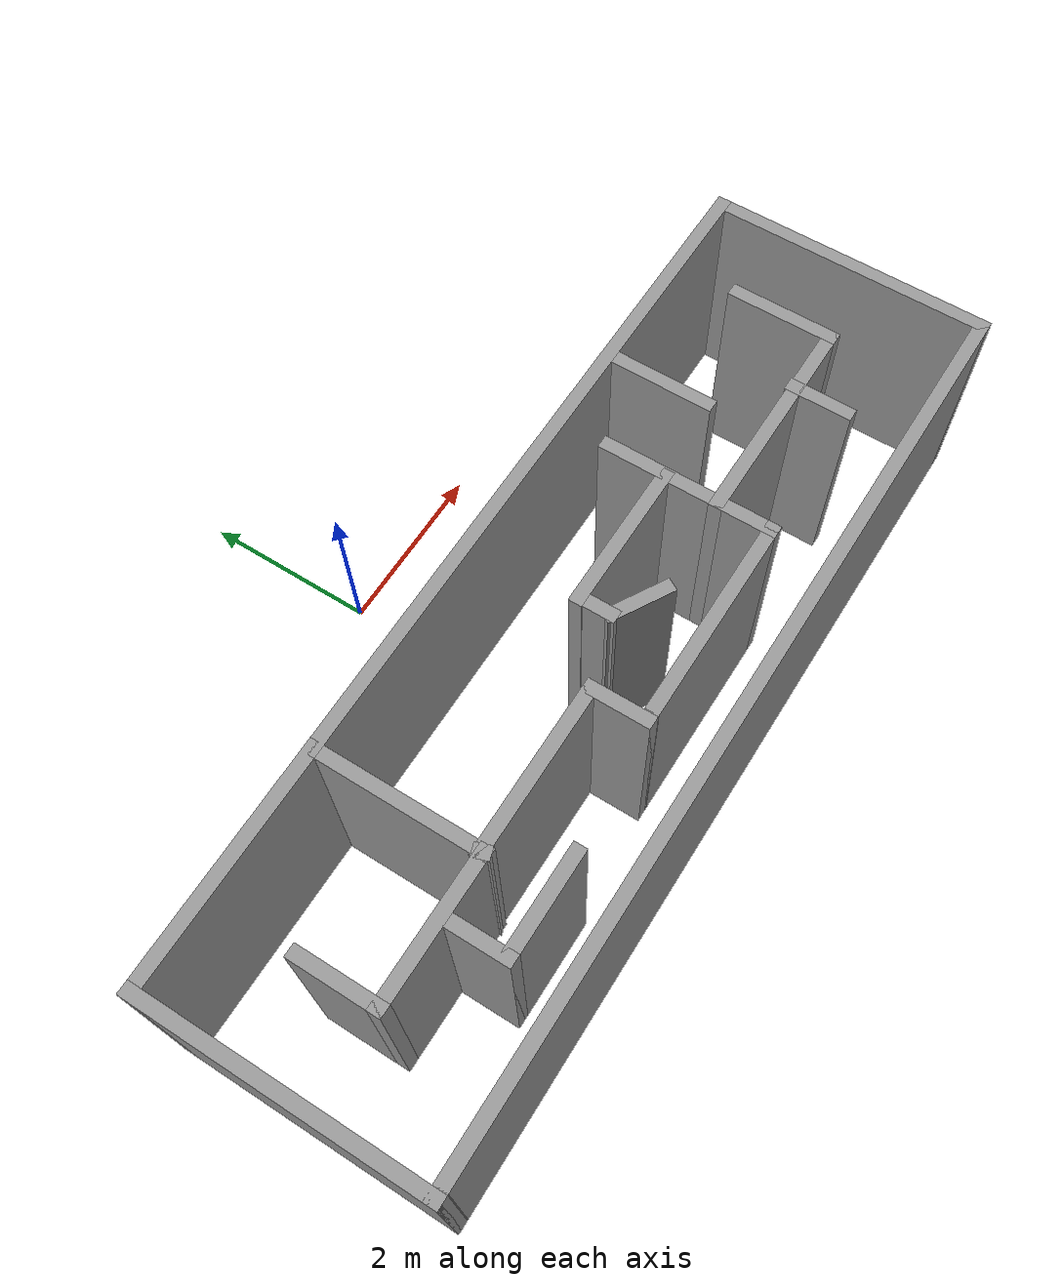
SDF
<?xml version='1.0'?>
<sdf version='1.7'>
  <model name='tmp_house'>
    <pose>0.225 -2.3075 0 0 -0 0</pose>
    <link name='Wall_0'>
      <collision name='Wall_0_Collision'>
        <geometry>
          <box>
            <size>2.75 0.15 2.5</size>
          </box>
        </geometry>
        <pose>0 0 1.25 0 -0 0</pose>
      </collision>
      <visual name='Wall_0_Visual'>
        <pose>0 0 1.25 0 -0 0</pose>
        <geometry>
          <box>
            <size>2.75 0.15 2.5</size>
          </box>
        </geometry>
        <material>
          <script>
            <uri>file://media/materials/scripts/gazebo.material</uri>
            <name>Gazebo/Grey</name>
          </script>
          <ambient>1 1 1 1</ambient>
        </material>
        <meta>
          <layer>0</layer>
        </meta>
      </visual>
      <pose>-3.755 0.8675 0 0 -0 3.14159</pose>
    </link>
    <link name='Wall_1'>
      <collision name='Wall_1_Collision'>
        <geometry>
          <box>
            <size>3.25 0.15 2.5</size>
          </box>
        </geometry>
        <pose>0 0 1.25 0 -0 0</pose>
      </collision>
      <visual name='Wall_1_Visual'>
        <pose>0 0 1.25 0 -0 0</pose>
        <geometry>
          <box>
            <size>3.25 0.15 2.5</size>
          </box>
        </geometry>
        <material>
          <script>
            <uri>file://media/materials/scripts/gazebo.material</uri>
            <name>Gazebo/Grey</name>
          </script>
          <ambient>1 1 1 1</ambient>
        </material>
        <meta>
          <layer>0</layer>
        </meta>
      </visual>
      <pose>-5.055 -0.6825 0 0 -0 -1.5708</pose>
    </link>
    <link name='Wall_10'>
      <collision name='Wall_10_Collision'>
        <geometry>
          <box>
            <size>0.181623 0.15 2.5</size>
          </box>
        </geometry>
        <pose>0 0 1.25 0 -0 0</pose>
      </collision>
      <visual name='Wall_10_Visual'>
        <pose>0 0 1.25 0 -0 0</pose>
        <geometry>
          <box>
            <size>0.181623 0.15 2.5</size>
          </box>
        </geometry>
        <material>
          <script>
            <uri>file://media/materials/scripts/gazebo.material</uri>
            <name>Gazebo/Grey</name>
          </script>
          <ambient>1 1 1 1</ambient>
        </material>
        <meta>
          <layer>0</layer>
        </meta>
      </visual>
      <pose>-2.46 -0.9675 0 0 -0 1.89255</pose>
    </link>
    <link name='Wall_11'>
      <collision name='Wall_11_Collision'>
        <geometry>
          <box>
            <size>2 0.15 2.5</size>
          </box>
        </geometry>
        <pose>0 0 1.25 0 -0 0</pose>
      </collision>
      <visual name='Wall_11_Visual'>
        <pose>0 0 1.25 0 -0 0</pose>
        <geometry>
          <box>
            <size>2 0.15 2.5</size>
          </box>
        </geometry>
        <material>
          <script>
            <uri>file://media/materials/scripts/gazebo.material</uri>
            <name>Gazebo/Grey</name>
          </script>
          <ambient>1 1 1 1</ambient>
        </material>
        <meta>
          <layer>0</layer>
        </meta>
      </visual>
      <pose>-1.54 -0.9525 0 0 -0 0</pose>
    </link>
    <link name='Wall_12'>
      <collision name='Wall_12_Collision'>
        <geometry>
          <box>
            <size>0.75 0.15 2.5</size>
          </box>
        </geometry>
        <pose>0 0 1.25 0 -0 0</pose>
      </collision>
      <visual name='Wall_12_Visual'>
        <pose>0 0 1.25 0 -0 0</pose>
        <geometry>
          <box>
            <size>0.75 0.15 2.5</size>
          </box>
        </geometry>
        <material>
          <script>
            <uri>file://media/materials/scripts/gazebo.material</uri>
            <name>Gazebo/Grey</name>
          </script>
          <ambient>1 1 1 1</ambient>
        </material>
        <meta>
          <layer>0</layer>
        </meta>
      </visual>
      <pose>-0.615 -1.2525 0 0 -0 -1.5708</pose>
    </link>
    <link name='Wall_13'>
      <collision name='Wall_13_Collision'>
        <geometry>
          <box>
            <size>0.16 0.15 2.5</size>
          </box>
        </geometry>
        <pose>0 0 1.25 0 -0 0</pose>
      </collision>
      <visual name='Wall_13_Visual'>
        <pose>0 0 1.25 0 -0 0</pose>
        <geometry>
          <box>
            <size>0.16 0.15 2.5</size>
          </box>
        </geometry>
        <material>
          <script>
            <uri>file://media/materials/scripts/gazebo.material</uri>
            <name>Gazebo/Grey</name>
          </script>
          <ambient>1 1 1 1</ambient>
        </material>
        <meta>
          <layer>0</layer>
        </meta>
      </visual>
      <pose>-0.61 -1.5525 0 0 -0 0</pose>
    </link>
    <link name='Wall_14'>
      <collision name='Wall_14_Collision'>
        <geometry>
          <box>
            <size>2.5 0.15 2.5</size>
          </box>
        </geometry>
        <pose>0 0 1.25 0 -0 0</pose>
      </collision>
      <visual name='Wall_14_Visual'>
        <pose>0 0 1.25 0 -0 0</pose>
        <geometry>
          <box>
            <size>2.5 0.15 2.5</size>
          </box>
        </geometry>
        <material>
          <script>
            <uri>file://media/materials/scripts/gazebo.material</uri>
            <name>Gazebo/Grey</name>
          </script>
          <ambient>1 1 1 1</ambient>
        </material>
        <meta>
          <layer>0</layer>
        </meta>
      </visual>
      <pose>0.57 -1.5525 0 0 -0 0</pose>
    </link>
    <link name='Wall_15'>
      <collision name='Wall_15_Collision'>
        <geometry>
          <box>
            <size>2 0.15 2.5</size>
          </box>
        </geometry>
        <pose>0 0 1.25 0 -0 0</pose>
      </collision>
      <visual name='Wall_15_Visual'>
        <pose>0 0 1.25 0 -0 0</pose>
        <geometry>
          <box>
            <size>2 0.15 2.5</size>
          </box>
        </geometry>
        <material>
          <script>
            <uri>file://media/materials/scripts/gazebo.material</uri>
            <name>Gazebo/Grey</name>
          </script>
          <ambient>1 1 1 1</ambient>
        </material>
        <meta>
          <layer>0</layer>
        </meta>
      </visual>
      <pose>1.745 -0.6275 0 0 -0 1.5708</pose>
    </link>
    <link name='Wall_17'>
      <collision name='Wall_17_Collision'>
        <geometry>
          <box>
            <size>1.75 0.15 2.5</size>
          </box>
        </geometry>
        <pose>0 0 1.25 0 -0 0</pose>
      </collision>
      <visual name='Wall_17_Visual'>
        <pose>0 0 1.25 0 -0 0</pose>
        <geometry>
          <box>
            <size>1.75 0.15 2.5</size>
          </box>
        </geometry>
        <material>
          <script>
            <uri>file://media/materials/scripts/gazebo.material</uri>
            <name>Gazebo/Grey</name>
          </script>
          <ambient>1 1 1 1</ambient>
        </material>
        <meta>
          <layer>0</layer>
        </meta>
      </visual>
      <pose>0.925 -0.3625 0 0 -0 3.14159</pose>
    </link>
    <link name='Wall_18'>
      <collision name='Wall_18_Collision'>
        <geometry>
          <box>
            <size>0.16 0.15 2.5</size>
          </box>
        </geometry>
        <pose>0 0 1.25 0 -0 0</pose>
      </collision>
      <visual name='Wall_18_Visual'>
        <pose>0 0 1.25 0 -0 0</pose>
        <geometry>
          <box>
            <size>0.16 0.15 2.5</size>
          </box>
        </geometry>
        <material>
          <script>
            <uri>file://media/materials/scripts/gazebo.material</uri>
            <name>Gazebo/Grey</name>
          </script>
          <ambient>1 1 1 1</ambient>
        </material>
        <meta>
          <layer>0</layer>
        </meta>
      </visual>
      <pose>0.13 -0.3625 0 0 -0 0</pose>
    </link>
    <link name='Wall_19'>
      <collision name='Wall_19_Collision'>
        <geometry>
          <box>
            <size>0.5 0.15 2.5</size>
          </box>
        </geometry>
        <pose>0 0 1.25 0 -0 0</pose>
      </collision>
      <visual name='Wall_19_Visual'>
        <pose>0 0 1.25 0 -0 0</pose>
        <geometry>
          <box>
            <size>0.5 0.15 2.5</size>
          </box>
        </geometry>
        <material>
          <script>
            <uri>file://media/materials/scripts/gazebo.material</uri>
            <name>Gazebo/Grey</name>
          </script>
          <ambient>1 1 1 1</ambient>
        </material>
        <meta>
          <layer>0</layer>
        </meta>
      </visual>
      <pose>0.135 -0.5375 0 0 -0 -1.5708</pose>
    </link>
    <link name='Wall_2'>
      <collision name='Wall_2_Collision'>
        <geometry>
          <box>
            <size>0.16 0.15 2.5</size>
          </box>
        </geometry>
        <pose>0 0 1.25 0 -0 0</pose>
      </collision>
      <visual name='Wall_2_Visual'>
        <pose>0 0 1.25 0 -0 0</pose>
        <geometry>
          <box>
            <size>0.16 0.15 2.5</size>
          </box>
        </geometry>
        <material>
          <script>
            <uri>file://media/materials/scripts/gazebo.material</uri>
            <name>Gazebo/Grey</name>
          </script>
          <ambient>1 1 1 1</ambient>
        </material>
        <meta>
          <layer>0</layer>
        </meta>
      </visual>
      <pose>-5.05 -2.2325 0 0 -0 0</pose>
    </link>
    <link name='Wall_20'>
      <collision name='Wall_20_Collision'>
        <geometry>
          <box>
            <size>0.75 0.15 2.5</size>
          </box>
        </geometry>
        <pose>0 0 1.25 0 -0 0</pose>
      </collision>
      <visual name='Wall_20_Visual'>
        <pose>0 0 1.25 0 -0 0</pose>
        <geometry>
          <box>
            <size>0.75 0.15 2.5</size>
          </box>
        </geometry>
        <material>
          <script>
            <uri>file://media/materials/scripts/gazebo.material</uri>
            <name>Gazebo/Grey</name>
          </script>
          <ambient>1 1 1 1</ambient>
        </material>
        <meta>
          <layer>0</layer>
        </meta>
      </visual>
      <pose>0.394807 -0.8625 0 0 -0 -0.523599</pose>
    </link>
    <link name='Wall_22'>
      <collision name='Wall_22_Collision'>
        <geometry>
          <box>
            <size>2.5 0.15 2.5</size>
          </box>
        </geometry>
        <pose>0 0 1.25 0 -0 0</pose>
      </collision>
      <visual name='Wall_22_Visual'>
        <pose>0 0 1.25 0 -0 0</pose>
        <geometry>
          <box>
            <size>2.5 0.15 2.5</size>
          </box>
        </geometry>
        <material>
          <script>
            <uri>file://media/materials/scripts/gazebo.material</uri>
            <name>Gazebo/Grey</name>
          </script>
          <ambient>1 1 1 1</ambient>
        </material>
        <meta>
          <layer>0</layer>
        </meta>
      </visual>
      <pose>2.92 -0.9625 0 0 -0 0</pose>
    </link>
    <link name='Wall_23'>
      <collision name='Wall_23_Collision'>
        <geometry>
          <box>
            <size>1.25 0.15 2.5</size>
          </box>
        </geometry>
        <pose>0 0 1.25 0 -0 0</pose>
      </collision>
      <visual name='Wall_23_Visual'>
        <pose>0 0 1.25 0 -0 0</pose>
        <geometry>
          <box>
            <size>1.25 0.15 2.5</size>
          </box>
        </geometry>
        <material>
          <script>
            <uri>file://media/materials/scripts/gazebo.material</uri>
            <name>Gazebo/Grey</name>
          </script>
          <ambient>1 1 1 1</ambient>
        </material>
        <meta>
          <layer>0</layer>
        </meta>
      </visual>
      <pose>4.095 -0.4125 0 0 -0 1.5708</pose>
    </link>
    <link name='Wall_25'>
      <collision name='Wall_25_Collision'>
        <geometry>
          <box>
            <size>1.25 0.15 2.5</size>
          </box>
        </geometry>
        <pose>0 0 1.25 0 -0 0</pose>
      </collision>
      <visual name='Wall_25_Visual'>
        <pose>0 0 1.25 0 -0 0</pose>
        <geometry>
          <box>
            <size>1.25 0.15 2.5</size>
          </box>
        </geometry>
        <material>
          <script>
            <uri>file://media/materials/scripts/gazebo.material</uri>
            <name>Gazebo/Grey</name>
          </script>
          <ambient>1 1 1 1</ambient>
        </material>
        <meta>
          <layer>0</layer>
        </meta>
      </visual>
      <pose>2.695 0.2575 0 0 -0 -1.5708</pose>
    </link>
    <link name='Wall_27'>
      <collision name='Wall_27_Collision'>
        <geometry>
          <box>
            <size>0.75 0.15 2.5</size>
          </box>
        </geometry>
        <pose>0 0 1.25 0 -0 0</pose>
      </collision>
      <visual name='Wall_27_Visual'>
        <pose>0 0 1.25 0 -0 0</pose>
        <geometry>
          <box>
            <size>0.75 0.15 2.5</size>
          </box>
        </geometry>
        <material>
          <script>
            <uri>file://media/materials/scripts/gazebo.material</uri>
            <name>Gazebo/Grey</name>
          </script>
          <ambient>1 1 1 1</ambient>
        </material>
        <meta>
          <layer>0</layer>
        </meta>
      </visual>
      <pose>3.345 -1.2425 0 0 -0 -1.5708</pose>
    </link>
    <link name='Wall_29'>
      <collision name='Wall_29_Collision'>
        <geometry>
          <box>
            <size>0.75 0.15 2.5</size>
          </box>
        </geometry>
        <pose>0 0 1.25 0 -0 0</pose>
      </collision>
      <visual name='Wall_29_Visual'>
        <pose>0 0 1.25 0 -0 0</pose>
        <geometry>
          <box>
            <size>0.75 0.15 2.5</size>
          </box>
        </geometry>
        <material>
          <script>
            <uri>file://media/materials/scripts/gazebo.material</uri>
            <name>Gazebo/Grey</name>
          </script>
          <ambient>1 1 1 1</ambient>
        </material>
        <meta>
          <layer>0</layer>
        </meta>
      </visual>
      <pose>-3.125 -1.3725 0 0 -0 -1.5708</pose>
    </link>
    <link name='Wall_3'>
      <collision name='Wall_3_Collision'>
        <geometry>
          <box>
            <size>10.25 0.15 2.5</size>
          </box>
        </geometry>
        <pose>0 0 1.25 0 -0 0</pose>
      </collision>
      <visual name='Wall_3_Visual'>
        <pose>0 0 1.25 0 -0 0</pose>
        <geometry>
          <box>
            <size>10.25 0.15 2.5</size>
          </box>
        </geometry>
        <material>
          <script>
            <uri>file://media/materials/scripts/gazebo.material</uri>
            <name>Gazebo/Grey</name>
          </script>
          <ambient>1 1 1 1</ambient>
        </material>
        <meta>
          <layer>0</layer>
        </meta>
      </visual>
      <pose>0.005 -2.2325 0 0 -0 0</pose>
    </link>
    <link name='Wall_30'>
      <collision name='Wall_30_Collision'>
        <geometry>
          <box>
            <size>1.25 0.15 2.5</size>
          </box>
        </geometry>
        <pose>0 0 1.25 0 -0 0</pose>
      </collision>
      <visual name='Wall_30_Visual'>
        <pose>0 0 1.25 0 -0 0</pose>
        <geometry>
          <box>
            <size>1.25 0.15 2.5</size>
          </box>
        </geometry>
        <material>
          <script>
            <uri>file://media/materials/scripts/gazebo.material</uri>
            <name>Gazebo/Grey</name>
          </script>
          <ambient>1 1 1 1</ambient>
        </material>
        <meta>
          <layer>0</layer>
        </meta>
      </visual>
      <pose>-2.575 -1.6725 0 0 -0 0</pose>
    </link>
    <link name='Wall_4'>
      <collision name='Wall_4_Collision'>
        <geometry>
          <box>
            <size>3.25 0.15 2.5</size>
          </box>
        </geometry>
        <pose>0 0 1.25 0 -0 0</pose>
      </collision>
      <visual name='Wall_4_Visual'>
        <pose>0 0 1.25 0 -0 0</pose>
        <geometry>
          <box>
            <size>3.25 0.15 2.5</size>
          </box>
        </geometry>
        <material>
          <script>
            <uri>file://media/materials/scripts/gazebo.material</uri>
            <name>Gazebo/Grey</name>
          </script>
          <ambient>1 1 1 1</ambient>
        </material>
        <meta>
          <layer>0</layer>
        </meta>
      </visual>
      <pose>5.055 -0.6825 0 0 -0 1.5708</pose>
    </link>
    <link name='Wall_5'>
      <collision name='Wall_5_Collision'>
        <geometry>
          <box>
            <size>7.66 0.15 2.5</size>
          </box>
        </geometry>
        <pose>0 0 1.25 0 -0 0</pose>
      </collision>
      <visual name='Wall_5_Visual'>
        <pose>0 0 1.25 0 -0 0</pose>
        <geometry>
          <box>
            <size>7.66 0.15 2.5</size>
          </box>
        </geometry>
        <material>
          <script>
            <uri>file://media/materials/scripts/gazebo.material</uri>
            <name>Gazebo/Grey</name>
          </script>
          <ambient>1 1 1 1</ambient>
        </material>
        <meta>
          <layer>0</layer>
        </meta>
      </visual>
      <pose>1.3 0.8675 0 0 -0 3.14159</pose>
    </link>
    <link name='Wall_6'>
      <collision name='Wall_6_Collision'>
        <geometry>
          <box>
            <size>2 0.15 2.5</size>
          </box>
        </geometry>
        <pose>0 0 1.25 0 -0 0</pose>
      </collision>
      <visual name='Wall_6_Visual'>
        <pose>0 0 1.25 0 -0 0</pose>
        <geometry>
          <box>
            <size>2 0.15 2.5</size>
          </box>
        </geometry>
        <material>
          <script>
            <uri>file://media/materials/scripts/gazebo.material</uri>
            <name>Gazebo/Grey</name>
          </script>
          <ambient>1 1 1 1</ambient>
        </material>
        <meta>
          <layer>0</layer>
        </meta>
      </visual>
      <pose>-2.455 -0.0575 0 0 -0 -1.5708</pose>
    </link>
    <link name='Wall_7'>
      <collision name='Wall_7_Collision'>
        <geometry>
          <box>
            <size>1.75 0.15 2.5</size>
          </box>
        </geometry>
        <pose>0 0 1.25 0 -0 0</pose>
      </collision>
      <visual name='Wall_7_Visual'>
        <pose>0 0 1.25 0 -0 0</pose>
        <geometry>
          <box>
            <size>1.75 0.15 2.5</size>
          </box>
        </geometry>
        <material>
          <script>
            <uri>file://media/materials/scripts/gazebo.material</uri>
            <name>Gazebo/Grey</name>
          </script>
          <ambient>1 1 1 1</ambient>
        </material>
        <meta>
          <layer>0</layer>
        </meta>
      </visual>
      <pose>-3.255 -0.9825 0 0 -0 3.14159</pose>
    </link>
    <link name='Wall_8'>
      <collision name='Wall_8_Collision'>
        <geometry>
          <box>
            <size>1 0.15 2.5</size>
          </box>
        </geometry>
        <pose>0 0 1.25 0 -0 0</pose>
      </collision>
      <visual name='Wall_8_Visual'>
        <pose>0 0 1.25 0 -0 0</pose>
        <geometry>
          <box>
            <size>1 0.15 2.5</size>
          </box>
        </geometry>
        <material>
          <script>
            <uri>file://media/materials/scripts/gazebo.material</uri>
            <name>Gazebo/Grey</name>
          </script>
          <ambient>1 1 1 1</ambient>
        </material>
        <meta>
          <layer>0</layer>
        </meta>
      </visual>
      <pose>-4.055 -0.5575 0 0 -0 1.5708</pose>
    </link>
    <static>1</static>
  </model>
</sdf>
